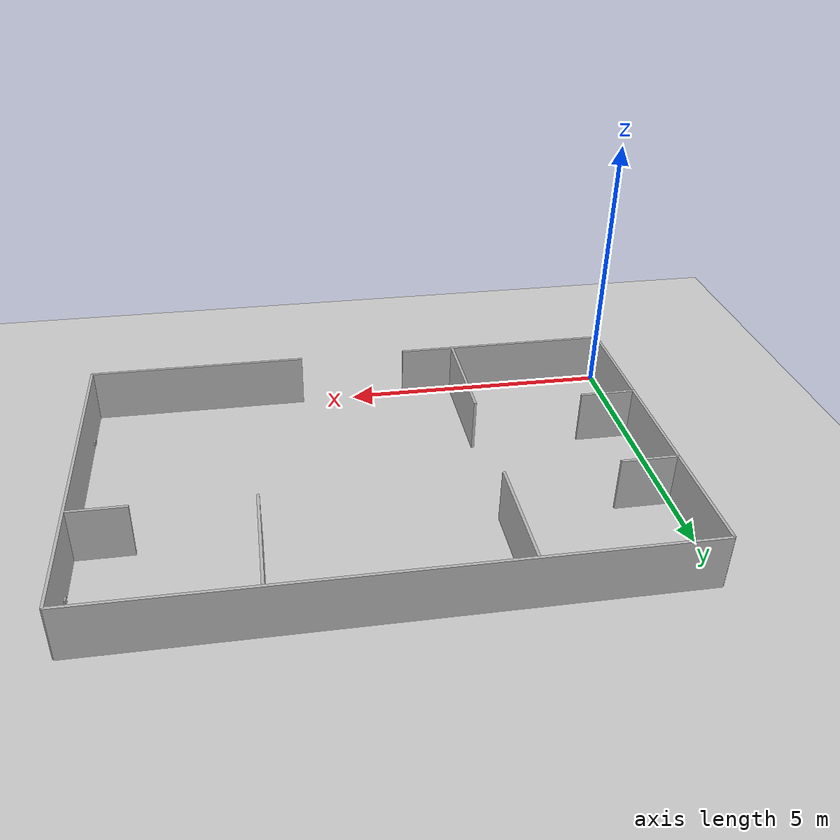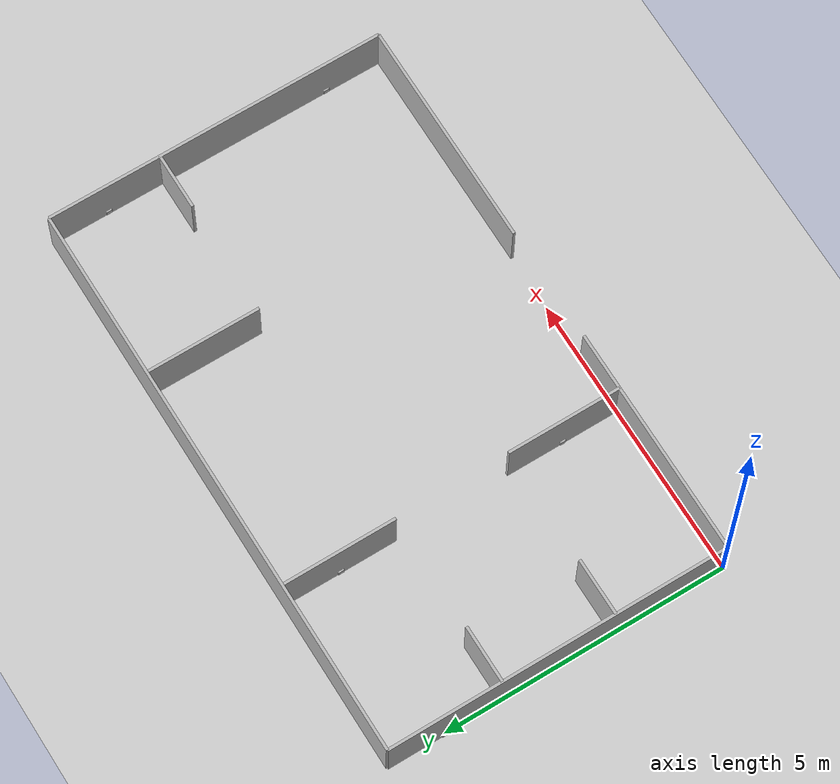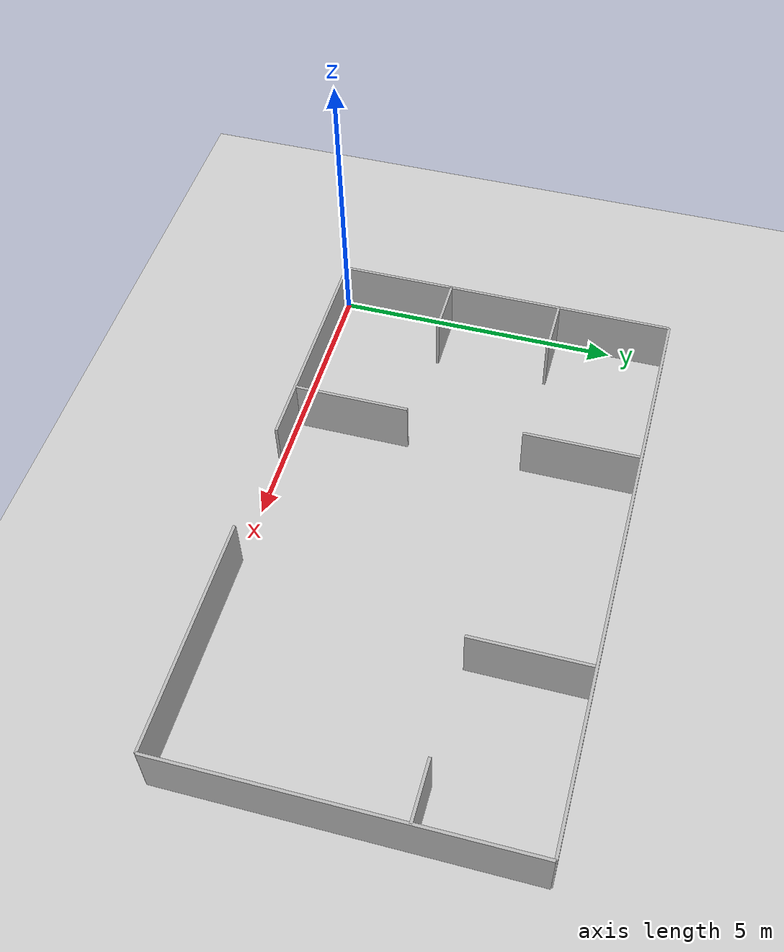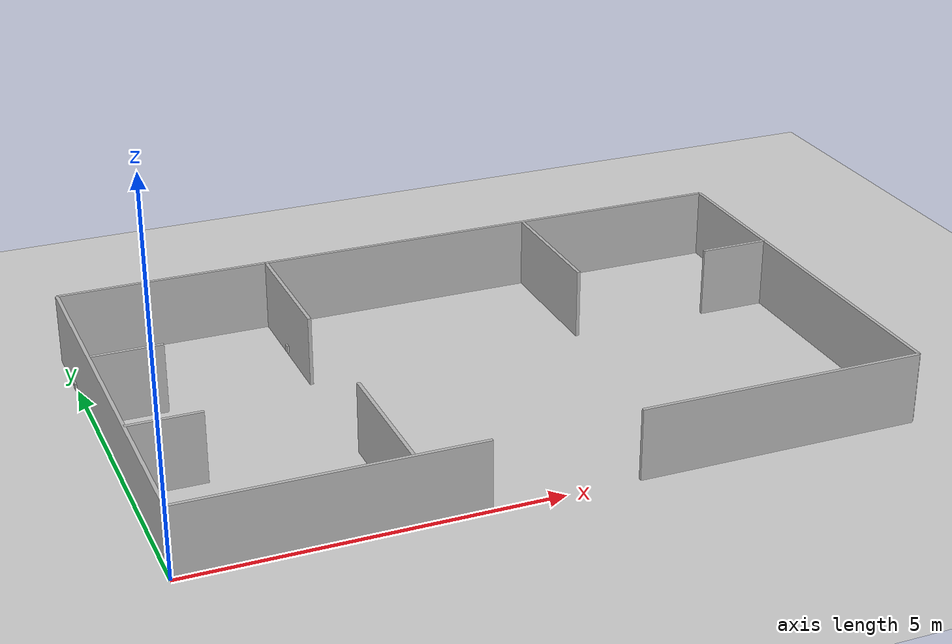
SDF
<?xml version="1.0" ?>
<sdf version="1.4">
  <world name="default">
    <include>
      <uri>model://ground_plane</uri>
    </include>
    <include>
      <uri>model://sun</uri>
    </include>
    <model name="box">
      <static>1</static>
      <pose>0 3 0.5 0 0 0</pose>
      <link name="link">
        <collision name="collision">
          <geometry>
            <box>
              <size>0.05 6 1</size>
            </box>
          </geometry>
        </collision>
        <visual name="visual">
          <geometry>
            <box>
              <size>0.05 6 1</size>
            </box>
          </geometry>
          <material>
            <script>
              <uri>model://brick_box_3x1x3/materials/scripts</uri>
              <uri>model://brick_box_3x1x3/materials/textures</uri>
              <name>BrickBox/Diffuse</name>
            </script>
          </material>
        </visual>
      </link>
    </model>
    <model name="box">
      <static>1</static>
      <pose>10 3 0.5 0 0 0</pose>
      <link name="link">
        <collision name="collision">
          <geometry>
            <box>
              <size>0.05 6 1</size>
            </box>
          </geometry>
        </collision>
        <visual name="visual">
          <geometry>
            <box>
              <size>0.05 6 1</size>
            </box>
          </geometry>
          <material>
            <script>
              <uri>model://brick_box_3x1x3/materials/scripts</uri>
              <uri>model://brick_box_3x1x3/materials/textures</uri>
              <name>BrickBox/Diffuse</name>
            </script>
          </material>
        </visual>
      </link>
    </model>
    <model name="box">
      <static>1</static>
      <pose>2 0 0.5 0 0 0</pose>
      <link name="link">
        <collision name="collision">
          <geometry>
            <box>
              <size>4 0.05 1</size>
            </box>
          </geometry>
        </collision>
        <visual name="visual">
          <geometry>
            <box>
              <size>4 0.05 1</size>
            </box>
          </geometry>
          <material>
            <script>
              <uri>model://brick_box_3x1x3/materials/scripts</uri>
              <uri>model://brick_box_3x1x3/materials/textures</uri>
              <name>BrickBox/Diffuse</name>
            </script>
          </material>
        </visual>
      </link>
    </model>
    <model name="box">
      <static>1</static>
      <pose>8 0 0.5 0 0 0</pose>
      <link name="link">
        <collision name="collision">
          <geometry>
            <box>
              <size>4 0.05 1</size>
            </box>
          </geometry>
        </collision>
        <visual name="visual">
          <geometry>
            <box>
              <size>4 0.05 1</size>
            </box>
          </geometry>
          <material>
            <script>
              <uri>model://brick_box_3x1x3/materials/scripts</uri>
              <uri>model://brick_box_3x1x3/materials/textures</uri>
              <name>BrickBox/Diffuse</name>
            </script>
          </material>
        </visual>
      </link>
    </model>
    <model name="box">
      <static>1</static>
      <pose>5 6 0.5 0 0 0</pose>
      <link name="link">
        <collision name="collision">
          <geometry>
            <box>
              <size>10 0.05 1</size>
            </box>
          </geometry>
        </collision>
        <visual name="visual">
          <geometry>
            <box>
              <size>10 0.05 1</size>
            </box>
          </geometry>
          <material>
            <script>
              <uri>model://brick_box_3x1x3/materials/scripts</uri>
              <uri>model://brick_box_3x1x3/materials/textures</uri>
              <name>BrickBox/Diffuse</name>
            </script>
          </material>
        </visual>
      </link>
    </model>
    <model name="box">
      <static>1</static>
      <pose>0.5 2 0.5 0 0 0</pose>
      <link name="link">
        <collision name="collision">
          <geometry>
            <box>
              <size>1 0.05 1</size>
            </box>
          </geometry>
        </collision>
        <visual name="visual">
          <geometry>
            <box>
              <size>1 0.05 1</size>
            </box>
          </geometry>
          <material>
            <script>
              <uri>model://brick_box_3x1x3/materials/scripts</uri>
              <uri>model://brick_box_3x1x3/materials/textures</uri>
              <name>BrickBox/Diffuse</name>
            </script>
          </material>
        </visual>
      </link>
    </model>
    <model name="box">
      <static>1</static>
      <pose>0.5 4 0.5 0 0 0</pose>
      <link name="link">
        <collision name="collision">
          <geometry>
            <box>
              <size>1 0.05 1</size>
            </box>
          </geometry>
        </collision>
        <visual name="visual">
          <geometry>
            <box>
              <size>1 0.05 1</size>
            </box>
          </geometry>
          <material>
            <script>
              <uri>model://brick_box_3x1x3/materials/scripts</uri>
              <uri>model://brick_box_3x1x3/materials/textures</uri>
              <name>BrickBox/Diffuse</name>
            </script>
          </material>
        </visual>
      </link>
    </model>
    <model name="box">
      <static>1</static>
      <pose>9.5 4 0.5 0 0 0</pose>
      <link name="link">
        <collision name="collision">
          <geometry>
            <box>
              <size>1 0.05 1</size>
            </box>
          </geometry>
        </collision>
        <visual name="visual">
          <geometry>
            <box>
              <size>1 0.05 1</size>
            </box>
          </geometry>
          <material>
            <script>
              <uri>model://brick_box_3x1x3/materials/scripts</uri>
              <uri>model://brick_box_3x1x3/materials/textures</uri>
              <name>BrickBox/Diffuse</name>
            </script>
          </material>
        </visual>
      </link>
    </model>
    <model name="box">
      <static>1</static>
      <pose>3 1 0.5 0 0 0</pose>
      <link name="link">
        <collision name="collision">
          <geometry>
            <box>
              <size>0.05 2 1</size>
            </box>
          </geometry>
        </collision>
        <visual name="visual">
          <geometry>
            <box>
              <size>0.05 2 1</size>
            </box>
          </geometry>
          <material>
            <script>
              <uri>model://brick_box_3x1x3/materials/scripts</uri>
              <uri>model://brick_box_3x1x3/materials/textures</uri>
              <name>BrickBox/Diffuse</name>
            </script>
          </material>
        </visual>
      </link>
    </model>
    <model name="box">
      <static>1</static>
      <pose>3 5 0.5 0 0 0</pose>
      <link name="link">
        <collision name="collision">
          <geometry>
            <box>
              <size>0.05 2 1</size>
            </box>
          </geometry>
        </collision>
        <visual name="visual">
          <geometry>
            <box>
              <size>0.05 2 1</size>
            </box>
          </geometry>
          <material>
            <script>
              <uri>model://brick_box_3x1x3/materials/scripts</uri>
              <uri>model://brick_box_3x1x3/materials/textures</uri>
              <name>BrickBox/Diffuse</name>
            </script>
          </material>
        </visual>
      </link>
    </model>
    <model name="box">
      <static>1</static>
      <pose>7 5 0.5 0 0 0</pose>
      <link name="link">
        <collision name="collision">
          <geometry>
            <box>
              <size>0.05 2 1</size>
            </box>
          </geometry>
        </collision>
        <visual name="visual">
          <geometry>
            <box>
              <size>0.05 2 1</size>
            </box>
          </geometry>
          <material>
            <script>
              <uri>model://brick_box_3x1x3/materials/scripts</uri>
              <uri>model://brick_box_3x1x3/materials/textures</uri>
              <name>BrickBox/Diffuse</name>
            </script>
          </material>
        </visual>
      </link>
    </model>
    <model name="qrcode1">
      <static>1</static>
      <pose>2.975 1 0.1 0 0 0</pose>
      <link name="link">
        <collision name="collision">
          <geometry>
            <box>
              <size>0.05 0.1 0.1</size>
            </box>
          </geometry>
        </collision>
        <visual name="visual">
          <geometry>
            <box>
              <size>0.05 0.1 0.1</size>
            </box>
          </geometry>
          <material>
            <script>
              <uri>model://qrcode1/materials/scripts</uri>
              <uri>model://qrcode1/materials/textures</uri>
              <name>qrcode/qr1</name>
            </script>
          </material>
        </visual>
      </link>
    </model>
<model name="qrcode2">
      <static>1</static>
      <pose>2.975 5 0.1 0 0 0</pose>
      <link name="link">
        <collision name="collision">
          <geometry>
            <box>
              <size>0.05 0.1 0.1</size>
            </box>
          </geometry>
        </collision>
        <visual name="visual">
          <geometry>
            <box>
              <size>0.05 0.1 0.1</size>
            </box>
          </geometry>
          <material>
            <script>
              <uri>model://qrcode2/materials/scripts</uri>
              <uri>model://qrcode2/materials/textures</uri>
              <name>qrcode/qr2</name>
            </script>
          </material>
        </visual>
      </link>
    </model>
<model name="qrcode3">
      <static>1</static>
      <pose>9.975 5 0.1 0 0 0</pose>
      <link name="link">
        <collision name="collision">
          <geometry>
            <box>
              <size>0.05 0.1 0.1</size>
            </box>
          </geometry>
        </collision>
        <visual name="visual">
          <geometry>
            <box>
              <size>0.05 0.1 0.1</size>
            </box>
          </geometry>
          <material>
            <script>
              <uri>model://qrcode3/materials/scripts</uri>
              <uri>model://qrcode3/materials/textures</uri>
              <name>qrcode/qr3</name>
            </script>
          </material>
        </visual>
      </link>
    </model>
<model name="qrcodeA">
      <static>1</static>
      <pose>-0.025 1 0.1 0 0 0</pose>
      <link name="link">
        <collision name="collision">
          <geometry>
            <box>
              <size>0.05 0.1 0.1</size>
            </box>
          </geometry>
        </collision>
        <visual name="visual">
          <geometry>
            <box>
              <size>0.05 0.1 0.1</size>
            </box>
          </geometry>
          <material>
            <script>
              <uri>model://qrcodeA/materials/scripts</uri>
              <uri>model://qrcodeA/materials/textures</uri>
              <name>qrcode/qrA</name>
            </script>
          </material>
        </visual>
      </link>
    </model>
<model name="qrcodeB">
      <static>1</static>
      <pose>-0.025 5 0.1 0 0 0</pose>
      <link name="link">
        <collision name="collision">
          <geometry>
            <box>
              <size>0.05 0.1 0.1</size>
            </box>
          </geometry>
        </collision>
        <visual name="visual">
          <geometry>
            <box>
              <size>0.05 0.1 0.1</size>
            </box>
          </geometry>
          <material>
            <script>
              <uri>model://qrcodeB/materials/scripts</uri>
              <uri>model://qrcodeB/materials/textures</uri>
              <name>qrcode/qrB</name>
            </script>
          </material>
        </visual>
      </link>
    </model>
<model name="qrcodeC">
      <static>1</static>
      <pose>9.975 1 0.1 0 0 0</pose>
      <link name="link">
        <collision name="collision">
          <geometry>
            <box>
              <size>0.05 0.1 0.1</size>
            </box>
          </geometry>
        </collision>
        <visual name="visual">
          <geometry>
            <box>
              <size>0.05 0.1 0.1</size>
            </box>
          </geometry>
          <material>
            <script>
              <uri>model://qrcodeC/materials/scripts</uri>
              <uri>model://qrcodeC/materials/textures</uri>
              <name>qrcode/qrC</name>
            </script>
          </material>
        </visual>
      </link>
    </model>
  </world>
</sdf>
